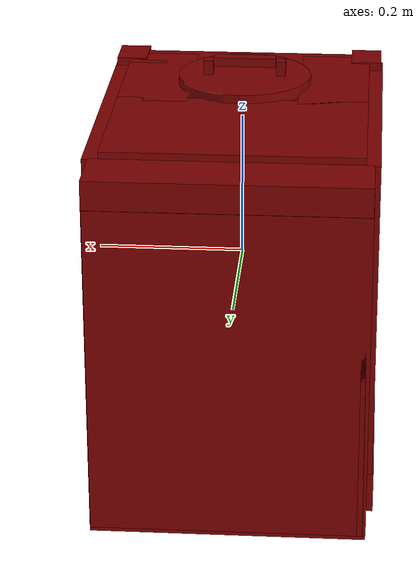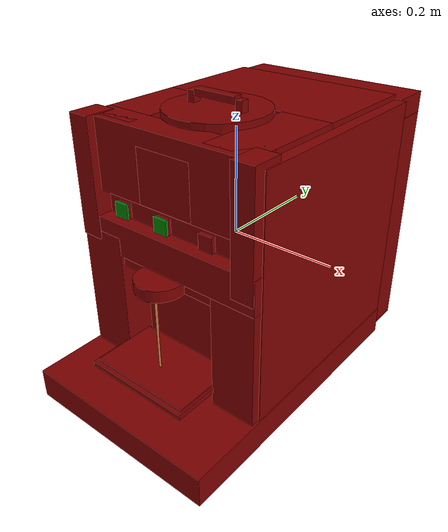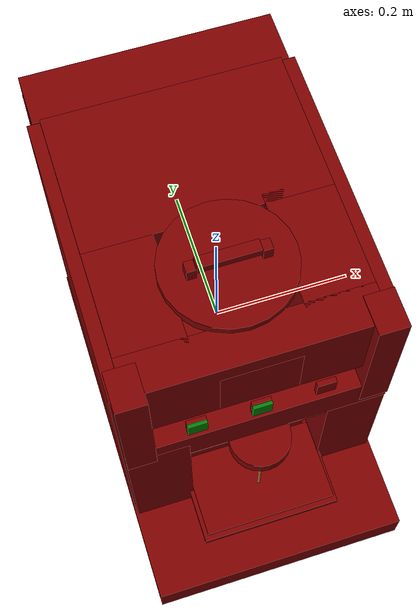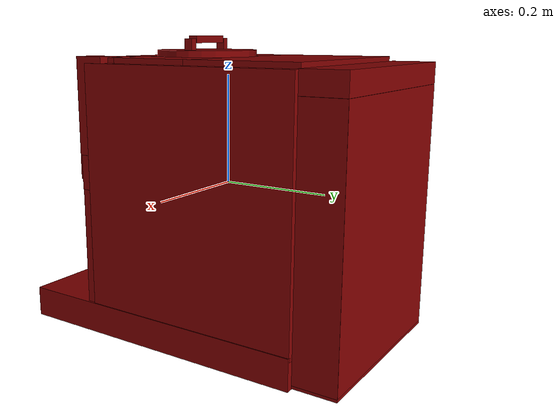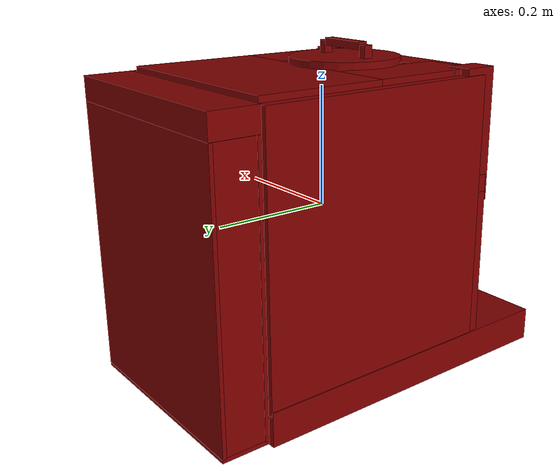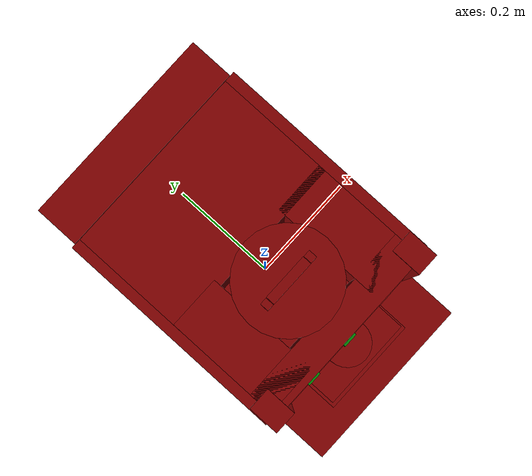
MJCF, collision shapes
<?xml version='1.0' encoding='UTF-8'?>
<mujoco model="model">
  <option timestep="0.002" gravity="0.0 0.0 -9.81"/>
  <compiler angle="radian"/>
  <asset>
    <mesh file="visuals/Body001.obj" name="Body001_vis"/>
    <mesh file="visuals/Button001.obj" name="Button001_vis"/>
    <mesh file="visuals/Button002.obj" name="Button002_vis"/>
    <mesh file="visuals/Button003.obj" name="Button003_vis"/>
    <mesh file="visuals/Container001_Clear.obj" name="Container001_Clear_vis"/>
    <mesh file="visuals/Lid001.obj" name="Lid001_vis"/>
    <mesh file="visuals/Lid002.obj" name="Lid002_vis"/>
    <mesh file="visuals/Lid003_Clear.obj" name="Lid003_Clear_vis"/>
    <texture file="visuals/T_BC001.png" name="Body001_material" type="2d"/>
    <material name="Body001_material" rgba="1 1 1 1.0" texture="Body001_material" shininess="0.4472135901451111" specular="1"/>
    <texture file="visuals/T_BC001.png" name="Button001_material" type="2d"/>
    <material name="Button001_material" rgba="1 1 1 1.0" texture="Button001_material" shininess="0.4472135901451111" specular="0.3103448502657381"/>
    <texture file="visuals/T_BC001.png" name="Button002_material" type="2d"/>
    <material name="Button002_material" rgba="1 1 1 1.0" texture="Button002_material" shininess="0.4472135901451111" specular="0.3103448502657381"/>
    <texture file="visuals/T_BC001.png" name="Button003_material" type="2d"/>
    <material name="Button003_material" rgba="1 1 1 1.0" texture="Button003_material" shininess="0.4472135901451111" specular="0.3103448502657381"/>
    <texture file="visuals/T_BC001.png" name="Container001_Clear_material" type="2d"/>
    <material name="Container001_Clear_material" rgba="1 1 1 0.15000000596046448" texture="Container001_Clear_material" shininess="0.4472135901451111" specular="0.3103448502657381"/>
    <texture file="visuals/T_BC001.png" name="Lid003_Clear_material" type="2d"/>
    <material name="Lid003_Clear_material" rgba="1 1 1 0.15000000596046448" texture="Lid003_Clear_material" shininess="0.4472135901451111" specular="0.3103448502657381"/>
    <texture file="visuals/T_BC001.png" name="Lid001_material" type="2d"/>
    <material name="Lid001_material" rgba="1 1 1 1.0" texture="Lid001_material" shininess="0.4472135901451111" specular="0.3103448502657381"/>
    <texture file="visuals/T_BC001.png" name="Lid002_material" type="2d"/>
    <material name="Lid002_material" rgba="1 1 1 1.0" texture="Lid002_material" shininess="0.4472135901451111" specular="0.3103448502657381"/>
  </asset>
  <default>
    <default class="visual">
      <geom conaffinity="0" contype="0" group="1" type="mesh"/>
    </default>
    <default class="collision">
      <geom group="0" rgba="0.5 0 0 0.5"/>
    </default>
    <default class="spawn">
      <geom group="0" rgba="1 1 1 0.5" contype="0" conaffinity="0"/>
      <site group="0" rgba="1 1 1 0.5"/>
    </default>
    <default class="region">
      <geom group="1" conaffinity="0" contype="0" rgba="0 1 0 0"/>
    </default>
  </default>
  <worldbody>
    <body>
      <body name="object">
        <geom class="collision" type="box" pos="-0.08656279742717743 -0.18966200947761536 0.08783812075853348" size="0.013755256310105324 0.0021139136515557766 0.01374596357345581" quat="1.0 0.0 0.0 0.0" name="start_button_1" rgba="0.0 0.5 0 0.5"/>
        <geom class="collision" type="box" pos="0.002858309540897608 -0.19063909351825714 0.08783812075853348" size="0.013755256310105324 0.0021139136515557766 0.01374596543610096" quat="1.0 0.0 0.0 0.0" name="start_button_2" rgba="0.0 0.5 0 0.5"/>
        <geom mesh="Body001_vis" type="mesh" solimp="0.998 0.998 0.001" solref="0.001 1" friction="0.95 0.3 0.1" class="visual" material="Body001_material"/>
        <geom class="collision" type="box" pos="2.8172507882118225e-08 -0.04212667793035507 -0.24771960079669952" size="0.19233408570289612 0.28319981694221497 0.028330756351351738" quat="1.0 0.0 0.0 0.0"/>
        <geom class="collision" type="box" pos="0.1747974008321762 0.033362168818712234 -0.0020663589239120483" size="0.01573178358376026 0.20771101117134094 0.22518572211265564" quat="1.0 0.0 0.0 0.0"/>
        <geom class="collision" type="box" pos="-0.17479611933231354 0.033362168818712234 -0.0020663589239120483" size="0.01573178358376026 0.20771101117134094 0.22518572211265564" quat="1.0 0.0 0.0 0.0"/>
        <geom class="collision" type="box" pos="0.0011553901713341475 0.23440957069396973 -0.0020663589239120483" size="0.15873600542545319 0.007002820260822773 0.22518184781074524" quat="1.0 0.0 0.0 0.0"/>
        <geom class="collision" type="box" pos="-0.0013279425911605358 -0.1520579755306244 0.16851438581943512" size="0.17063848674297333 0.027968697249889374 0.06428945064544678" quat="1.0 0.0 0.0 0.0"/>
        <geom class="collision" type="box" pos="0.0026803985238075256 -0.15796922147274017 0.0809192806482315" size="0.1631934493780136 0.005449932999908924 0.0251083355396986" quat="1.0 0.0 0.0 0.0"/>
        <geom class="collision" type="box" pos="0.00010053296864498407 -0.14818602800369263 0.02842359058558941" size="0.18841195106506348 0.04348364844918251 0.03166427090764046" quat="1.0 0.0 0.0 0.0"/>
        <geom class="collision" type="box" pos="0.0024588487576693296 -0.17482073605060577 0.15380901098251343" size="0.05479605123400688 0.00544998561963439 0.04907641559839249" quat="1.0 0.0 0.0 0.0"/>
        <geom class="collision" type="box" pos="-0.14379830658435822 -0.1631445586681366 -0.09916676580905914" size="0.044637471437454224 0.028838874772191048 0.13034194707870483" quat="1.0 0.0 0.0 0.0"/>
        <geom class="collision" type="box" pos="0.1455070823431015 -0.16263577342033386 -0.09916674345731735" size="0.04267963767051697 0.028330037370324135 0.13034182786941528" quat="1.0 0.0 0.0 0.0"/>
        <geom class="collision" type="cylinder" pos="0.0004064809181727469 -0.1976943016052246 -0.01308422815054655" size="0.04411251097917557 0.010518781840801239" quat="1.0 0.0 0.0 0.0"/>
        <geom class="collision" type="box" pos="0.0012267082929611206 -0.13567201793193817 -0.1006997749209404" size="0.09369006007909775 0.00446873577311635 0.1303405910730362" quat="1.0 0.0 0.0 0.0"/>
        <geom class="collision" type="box" pos="-0.0013279425911605358 0.13203510642051697 0.16851438581943512" size="0.17063385248184204 0.10690145939588547 0.06428945064544678" quat="1.0 0.0 0.0 0.0"/>
        <geom class="collision" type="box" pos="-0.1241387277841568 -0.06446342915296555 0.16851438581943512" size="0.047650180757045746 0.1032470166683197 0.06428945064544678" quat="1.0 0.0 0.0 0.0"/>
        <geom class="collision" type="box" pos="0.12166361510753632 -0.06446344405412674 0.16851438581943512" size="0.04754546657204628 0.1032470166683197 0.06428945064544678" quat="1.0 0.0 0.0 0.0"/>
        <geom class="collision" type="box" pos="0.00046112763811834157 -0.20463477075099945 -0.18949750065803528" size="0.10506736487150192 0.06869201362133026 0.004904693458229303" quat="1.0 0.0 0.0 0.0"/>
        <geom class="collision" type="box" pos="-0.0001698266714811325 -0.15788453817367554 -0.21070528030395508" size="0.08164491504430771 0.02357828989624977 0.018965760245919228" quat="1.0 0.0 0.0 0.0"/>
        <geom class="collision" type="box" pos="0.1671382188796997 -0.16668297350406647 0.12519803643226624" size="0.02094433642923832 0.028329597786068916 0.10942689329385757" quat="1.0 0.0 0.0 0.0"/>
        <geom class="collision" type="box" pos="-0.16717612743377686 -0.16668297350406647 0.12519803643226624" size="0.020944321528077126 0.028329577296972275 0.10942689329385757" quat="1.0 0.0 0.0 0.0"/>
        <geom class="collision" type="box" pos="-0.0010786186903715134 -0.1642395704984665 -0.009987739846110344" size="0.10150422155857086 0.021342670544981956 0.013552128337323666" quat="1.0 0.0 0.0 0.0"/>
        <body name="Button001">
          <joint axis="0.0 1.0 0.0" pos="-0.0863819569349289 -0.18246974050998688 0.08731956034898758" limited="true" name="Button001_joint" range="0.0 0.003" type="slide" damping="1" frictionloss="1" armature=".01" stiffness="0.05"/>
          <geom mesh="Button001_vis" type="mesh" solimp="0.998 0.998 0.001" solref="0.001 1" friction="0.95 0.3 0.1" class="visual" material="Button001_material"/>
          <geom class="collision" type="box" pos="-0.08656279742717743 -0.18423490226268768 0.08783812075853348" size="0.013755256310105324 0.0027975630946457386 0.013745969161391258" quat="1.0 0.0 0.0 0.0"/>
        </body>
        <body name="Button002">
          <joint axis="0.0 1.0 0.0" pos="0.003169690491631627 -0.1824704110622406 0.08731956034898758" limited="true" name="Button002_joint" range="0.0 0.003" type="slide" damping="1" frictionloss="1" armature=".01" stiffness="0.05"/>
          <geom mesh="Button002_vis" type="mesh" solimp="0.998 0.998 0.001" solref="0.001 1" friction="0.95 0.3 0.1" class="visual" material="Button002_material"/>
          <geom class="collision" type="box" pos="0.002858309540897608 -0.18466836214065552 0.08783812075853348" size="0.013755256310105324 0.0027975630946457386 0.013745971955358982" quat="1.0 0.0 0.0 0.0"/>
        </body>
        <body name="Button003">
          <joint axis="0.0 1.0 0.0" pos="0.09403066337108612 -0.18246974050998688 0.08731956034898758" limited="true" name="Button003_joint" range="0.0 0.003" type="slide" damping="1" frictionloss="1" armature=".01" stiffness="0.05"/>
          <geom mesh="Button003_vis" type="mesh" solimp="0.998 0.998 0.001" solref="0.001 1" friction="0.95 0.3 0.1" class="visual" material="Button003_material"/>
          <geom class="collision" type="box" pos="0.09366127848625183 -0.1856563538312912 0.08783812075853348" size="0.013755256310105324 0.003861977020278573 0.013745967298746109" quat="1.0 0.0 0.0 0.0"/>
        </body>
        <body name="Container001_Clear">
          <geom mesh="Container001_Clear_vis" type="mesh" solimp="0.998 0.998 0.001" solref="0.001 1" friction="0.95 0.3 0.1" class="visual" material="Container001_Clear_material"/>
          <geom class="collision" type="box" pos="-0.0004629367613233626 0.2814921438694 -0.26998889446258545" size="0.18244677782058716 0.03973277658224106 0.003620794275775552" quat="1.0 0.0 0.0 0.0"/>
          <geom class="collision" type="box" pos="0.17647956311702728 0.2814921438694 -0.04162568971514702" size="0.005506495945155621 0.03973281756043434 0.2268640249967575" quat="1.0 0.0 0.0 0.0"/>
          <geom class="collision" type="box" pos="-0.17732581496238708 0.2814921438694 -0.04162568971514702" size="0.005506501533091068 0.03973283991217613 0.22686418890953064" quat="1.0 0.0 0.0 0.0"/>
          <geom class="collision" type="box" pos="-0.0009753966005519032 0.31798139214515686 -0.04162568226456642" size="0.18240725994110107 0.0032437648624181747 0.22686436772346497" quat="1.0 0.0 0.0 0.0"/>
          <geom class="collision" type="box" pos="-0.0009753966005519032 0.2454925775527954 -0.04162568226456642" size="0.1824074387550354 0.003243767423555255 0.2268645316362381" quat="1.0 0.0 0.0 0.0"/>
          <body name="Lid003_Clear">
            <geom mesh="Lid003_Clear_vis" type="mesh" solimp="0.998 0.998 0.001" solref="0.001 1" friction="0.95 0.3 0.1" class="visual" material="Lid003_Clear_material"/>
            <geom class="collision" type="box" pos="-0.0004629367613233626 0.2814921438694 0.2050417810678482" size="0.1824476420879364 0.03973288834095001 0.01945490576326847" quat="1.0 0.0 0.0 0.0"/>
          </body>
        </body>
        <body name="Lid001">
          <geom mesh="Lid001_vis" type="mesh" solimp="0.998 0.998 0.001" solref="0.001 1" friction="0.95 0.3 0.1" class="visual" material="Lid001_material"/>
          <geom class="collision" type="cylinder" pos="0.00012952630640938878 -0.04797057807445526 0.236366868019104" size="0.09157691895961761 0.008040505461394787" quat="1.0 0.0 0.0 0.0"/>
          <geom class="collision" type="box" pos="2.8172507882118225e-08 -0.04891711473464966 0.26311641931533813" size="0.04253393039107323 0.00828518532216549 0.006194868125021458" quat="1.0 0.0 0.0 0.0"/>
          <geom class="collision" type="box" pos="-0.0497814305126667 -0.04891711473464966 0.2527037560939789" size="0.006508178077638149 0.007907992228865623 0.01211793627589941" quat="1.0 0.0 0.0 0.0"/>
          <geom class="collision" type="box" pos="0.04994954541325569 -0.04891711473464966 0.2527037560939789" size="0.006508178077638149 0.007907992228865623 0.01211793627589941" quat="1.0 0.0 0.0 0.0"/>
        </body>
        <body name="Lid002">
          <geom mesh="Lid002_vis" type="mesh" solimp="0.998 0.998 0.001" solref="0.001 1" friction="0.95 0.3 0.1" class="visual" material="Lid002_material"/>
          <geom class="collision" type="box" pos="0.0017798191402107477 -0.2035243660211563 -0.18229486048221588" size="0.10001043230295181 0.062125593423843384 0.0019739093258976936" quat="1.0 0.0 0.0 0.0"/>
        </body>
        <site type="cylinder" rgba="0.8 0.5 0.25 1" size="0.002001030370593071 0.07498573511838913" pos="-7.066307443892583e-05 -0.21034936606884003 -0.11308341473340988" name="coffee_liquid"/>
        <site rgba="0 0 0 0" size="0.009999999776482582 0.009999999776482582" pos="-0.00028895068680867553 -0.2295876783132553 -0.18055595457553864" name="receptacle_place_site"/>
        <geom class="region" name="reg_main" type="box" pos="-3.725290298461914e-09 0.0 -0.012077853083610535" size="0.18906995451450348 0.3210624883174896 0.25748653507232666"/>
      </body>
    </body>
  </worldbody>
  <actuator>
    <motor name="Button001_joint_actuator" joint="Button001_joint" gear="0.5"/>
    <motor name="Button002_joint_actuator" joint="Button002_joint" gear="0.5"/>
    <motor name="Button003_joint_actuator" joint="Button003_joint" gear="0.5"/>
  </actuator>
</mujoco>
